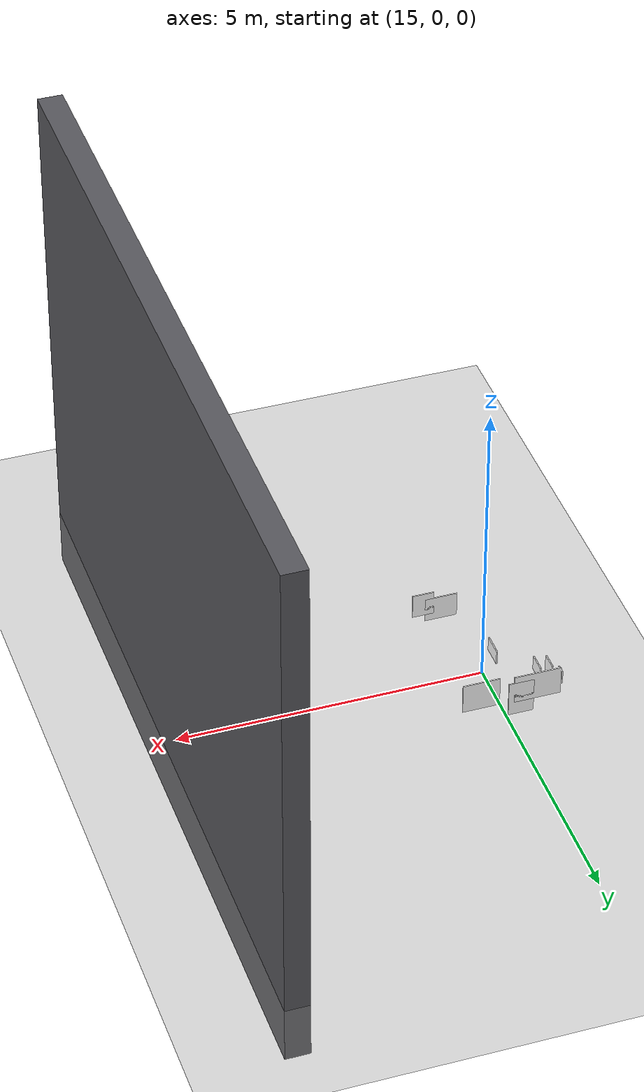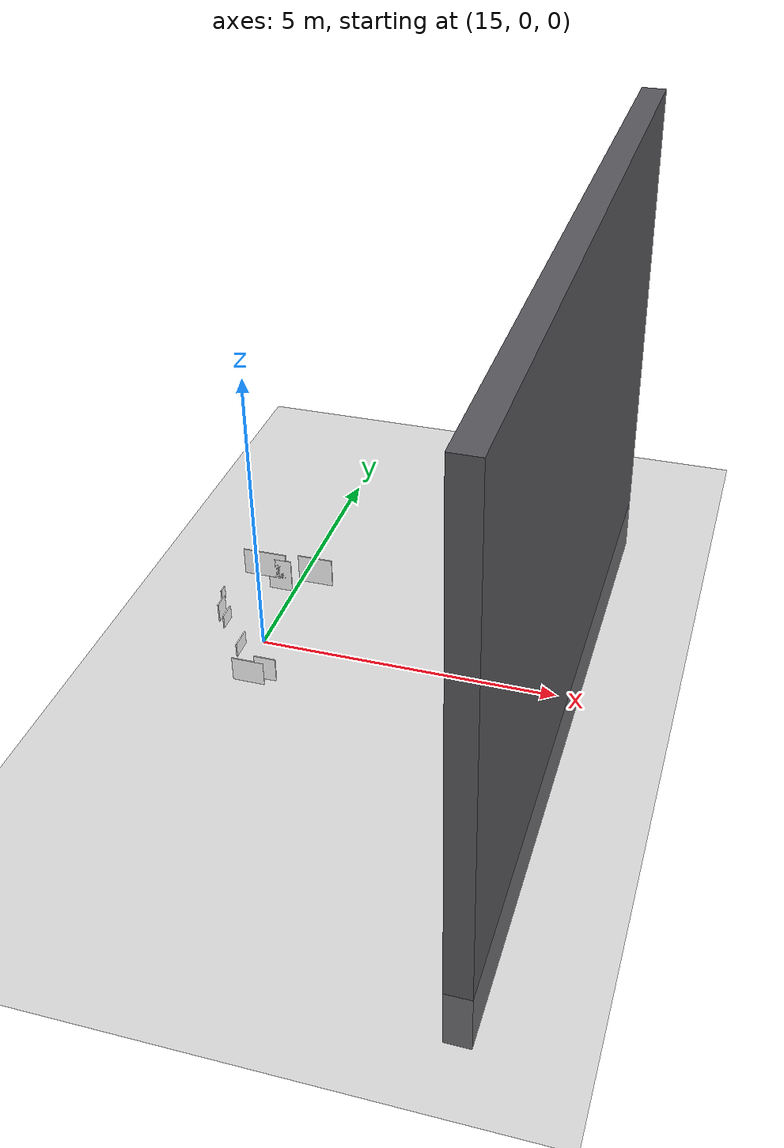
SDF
<sdf version="1.9">
 <world name="tunnel_world">
  <model name="ground_plane">
   <static>true</static>
   <link name="ground">
    <collision name="ground_collision">
     <geometry><plane><normal>0 0 1</normal><size>100 100</size></plane></geometry>
    </collision>
    <visual name="ground_visual">
     <geometry><plane><normal>0 0 1</normal><size>100 100</size></plane></geometry>
     <material>
      <diffuse>0.50 0.50 0.50 1</diffuse>
      <emissive>0.08 0.08 0.08 1</emissive>
      <ambient>0.5 0.5 0.5</ambient>
     </material>
    </visual>
   </link>
  </model>
  <model name="tunnel_end_wall_far">
   <static>true</static>
   <pose>20 0 3.5 0 0 0</pose>
   <link name="wall">
    <visual name="visual">
     <geometry><box><size>0.4 12 9</size></box></geometry>
     <material>
      <diffuse>0.35 0.35 0.37 1</diffuse>
      <emissive>0.06 0.06 0.06 1</emissive>
      <ambient>0.35 0.35 0.37</ambient>
     </material>
    </visual>
    <collision name="collision"><geometry><box><size>0.4 12 9</size></box></geometry></collision>
   </link>
  </model>
  <model name="defect_crack_02">
   <static>true</static>
   <pose>15.549 -1.25 0.553 0 0 0</pose>
   <link name="link">
    <visual name="visual">
     <laser_retro>500</laser_retro>
     <geometry><box><size>0.357 0.02 0.423</size></box></geometry>
     <material>
      <ambient>1 1 1 1</ambient>
      <diffuse>1 1 1 1</diffuse>
      <emissive>0.05 0.05 0.05 1</emissive>
      <specular>0.05 0.05 0.05 1</specular>
      <pbr>
       <metal>
        <albedo_map>file:///home/ylf/workspace/inspection_robot/data_gen/textures/crack_2.png</albedo_map>
        <metalness>0.0</metalness>
        <roughness>0.9</roughness>
       </metal>
      </pbr>
     </material>
    </visual>
    <collision name="collision"><geometry><box><size>0.357 0.02 0.423</size></box></geometry></collision>
   </link>
  </model>
  <model name="defect_equip_intrusion_01">
   <static>true</static>
   <pose>14.713 -0.309 0.135 0 0 0</pose>
   <link name="link">
    <visual name="visual">
     <laser_retro>900</laser_retro>
     <geometry><box><size>0.02 0.371 0.25</size></box></geometry>
     <material>
      <ambient>1 1 1 1</ambient>
      <diffuse>1 1 1 1</diffuse>
      <emissive>0.05 0.05 0.05 1</emissive>
      <specular>0.05 0.05 0.05 1</specular>
      <pbr>
       <metal>
        <albedo_map>file:///home/ylf/workspace/inspection_robot/data_gen/textures/equip_intrusion_3.png</albedo_map>
        <metalness>0.0</metalness>
        <roughness>0.9</roughness>
       </metal>
      </pbr>
     </material>
    </visual>
   </link>
  </model>
  <model name="defect_equip_intrusion_07">
   <static>true</static>
   <pose>14.059 0.443 0.187 0 0 0</pose>
   <link name="link">
    <visual name="visual">
     <laser_retro>900</laser_retro>
     <geometry><box><size>0.02 0.277 0.354</size></box></geometry>
     <material>
      <ambient>1 1 1 1</ambient>
      <diffuse>1 1 1 1</diffuse>
      <emissive>0.05 0.05 0.05 1</emissive>
      <specular>0.05 0.05 0.05 1</specular>
      <pbr>
       <metal>
        <albedo_map>file:///home/ylf/workspace/inspection_robot/data_gen/textures/equip_intrusion_3.png</albedo_map>
        <metalness>0.0</metalness>
        <roughness>0.9</roughness>
       </metal>
      </pbr>
     </material>
    </visual>
   </link>
  </model>
  <model name="defect_equip_intrusion_08">
   <static>true</static>
   <pose>14.206 0.309 0.137 0 0 0</pose>
   <link name="link">
    <visual name="visual">
     <laser_retro>900</laser_retro>
     <geometry><box><size>0.02 0.306 0.254</size></box></geometry>
     <material>
      <ambient>1 1 1 1</ambient>
      <diffuse>1 1 1 1</diffuse>
      <emissive>0.05 0.05 0.05 1</emissive>
      <specular>0.05 0.05 0.05 1</specular>
      <pbr>
       <metal>
        <albedo_map>file:///home/ylf/workspace/inspection_robot/data_gen/textures/equip_intrusion_3.png</albedo_map>
        <metalness>0.0</metalness>
        <roughness>0.9</roughness>
       </metal>
      </pbr>
     </material>
    </visual>
   </link>
  </model>
  <model name="defect_leakage_01">
   <static>true</static>
   <pose>14.838 1.25 0.5 0 0 0</pose>
   <link name="link">
    <visual name="visual">
     <laser_retro>300</laser_retro>
     <geometry><box><size>0.411 0.02 0.612</size></box></geometry>
     <material>
      <ambient>1 1 1 1</ambient>
      <diffuse>1 1 1 1</diffuse>
      <emissive>0.05 0.05 0.05 1</emissive>
      <specular>0.05 0.05 0.05 1</specular>
      <pbr>
       <metal>
        <albedo_map>file:///home/ylf/workspace/inspection_robot/data_gen/textures/leakage_5.png</albedo_map>
        <metalness>0.0</metalness>
        <roughness>0.9</roughness>
       </metal>
      </pbr>
     </material>
    </visual>
    <collision name="collision"><geometry><box><size>0.411 0.02 0.612</size></box></geometry></collision>
   </link>
  </model>
  <model name="defect_leakage_04">
   <static>true</static>
   <pose>15.494 1.25 0.711 0 0 0</pose>
   <link name="link">
    <visual name="visual">
     <laser_retro>300</laser_retro>
     <geometry><box><size>0.602 0.02 0.514</size></box></geometry>
     <material>
      <ambient>1 1 1 1</ambient>
      <diffuse>1 1 1 1</diffuse>
      <emissive>0.05 0.05 0.05 1</emissive>
      <specular>0.05 0.05 0.05 1</specular>
      <pbr>
       <metal>
        <albedo_map>file:///home/ylf/workspace/inspection_robot/data_gen/textures/leakage_5.png</albedo_map>
        <metalness>0.0</metalness>
        <roughness>0.9</roughness>
       </metal>
      </pbr>
     </material>
    </visual>
    <collision name="collision"><geometry><box><size>0.602 0.02 0.514</size></box></geometry></collision>
   </link>
  </model>
  <model name="defect_leakage_07">
   <static>true</static>
   <pose>14.574 1.25 0.674 0 0 0</pose>
   <link name="link">
    <visual name="visual">
     <laser_retro>300</laser_retro>
     <geometry><box><size>0.762 0.02 0.493</size></box></geometry>
     <material>
      <ambient>1 1 1 1</ambient>
      <diffuse>1 1 1 1</diffuse>
      <emissive>0.05 0.05 0.05 1</emissive>
      <specular>0.05 0.05 0.05 1</specular>
      <pbr>
       <metal>
        <albedo_map>file:///home/ylf/workspace/inspection_robot/data_gen/textures/leakage_5.png</albedo_map>
        <metalness>0.0</metalness>
        <roughness>0.9</roughness>
       </metal>
      </pbr>
     </material>
    </visual>
    <collision name="collision"><geometry><box><size>0.762 0.02 0.493</size></box></geometry></collision>
   </link>
  </model>
  <model name="defect_rail_fastener_broken_05">
   <static>true</static>
   <pose>13.975 0.717 0.276 0 0 0</pose>
   <link name="link">
    <visual name="visual">
     <laser_retro>450</laser_retro>
     <geometry><box><size>0.02 0.143 0.242</size></box></geometry>
     <material>
      <ambient>1 1 1 1</ambient>
      <diffuse>1 1 1 1</diffuse>
      <emissive>0.05 0.05 0.05 1</emissive>
      <specular>0.05 0.05 0.05 1</specular>
      <pbr>
       <metal>
        <albedo_map>file:///home/ylf/workspace/inspection_robot/data_gen/textures/rail_fastener_broken_5.png</albedo_map>
        <metalness>0.0</metalness>
        <roughness>0.9</roughness>
       </metal>
      </pbr>
     </material>
    </visual>
   </link>
  </model>
  <model name="defect_spalling_01">
   <static>true</static>
   <pose>15.251 -1.25 0.429 0 0 0</pose>
   <link name="link">
    <visual name="visual">
     <laser_retro>700</laser_retro>
     <geometry><box><size>0.532 0.02 0.427</size></box></geometry>
     <material>
      <ambient>1 1 1 1</ambient>
      <diffuse>1 1 1 1</diffuse>
      <emissive>0.05 0.05 0.05 1</emissive>
      <specular>0.05 0.05 0.05 1</specular>
      <pbr>
       <metal>
        <albedo_map>file:///home/ylf/workspace/inspection_robot/data_gen/textures/spalling_5.png</albedo_map>
        <metalness>0.0</metalness>
        <roughness>0.9</roughness>
       </metal>
      </pbr>
     </material>
    </visual>
    <collision name="collision"><geometry><box><size>0.532 0.02 0.427</size></box></geometry></collision>
   </link>
  </model>
 </world>
</sdf>
